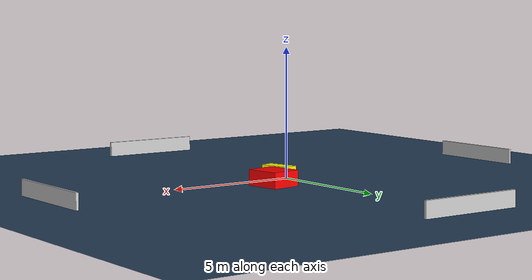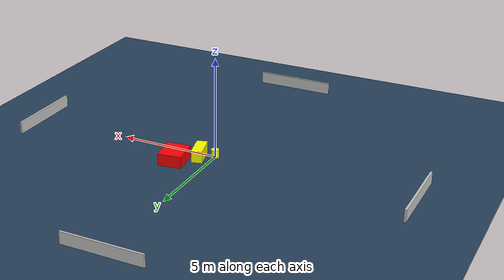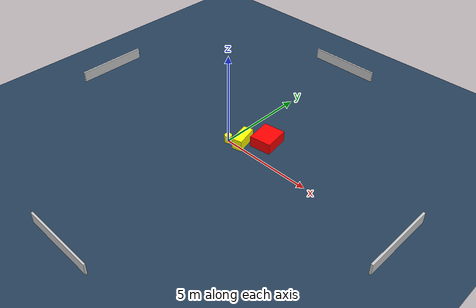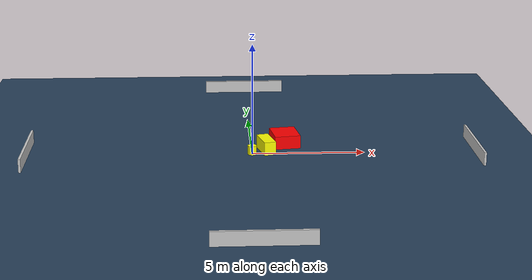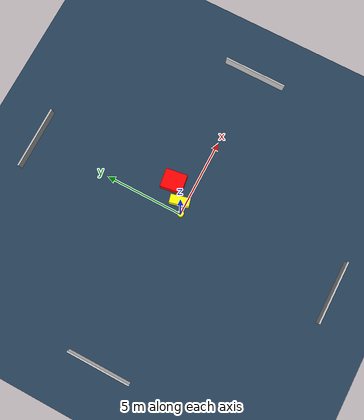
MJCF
<?xml version="1.0" ?>
<mujoco model="generated_environment">
  <option timestep="0.01" integrator="RK4" cone="elliptic"/>
  <default>
    <geom density="1"/>
  </default>
  <asset>
    <texture builtin="gradient" height="3072" name="skybox" rgb1="0.3 0.5 0.7" rgb2="0 0 0" type="skybox" width="512"/>
    <texture builtin="checker" height="300" name="groundplane" rgb1="0.2 0.3 0.4" rgb2="0.1 0.2 0.3" type="2d" width="300"/>
    <material name="groundplane" reflectance="0.2" texrepeat="5 5" texture="groundplane"/>
  </asset>
  <worldbody>
    <light dir="0 0 -1" directional="true" pos="0 0 1.5"/>
    <geom condim="3" friction="0.5 0.005 0.001" material="groundplane" name="floor" pos="0 0 0" size="0 0 0.05" type="plane"/>
    <body name="walls">
      <geom name="wall_1" condim="4" pos="-10.0 0.0 0.3" rgba="0.800000011920929 0.800000011920929 0.800000011920929 1.0" size="0.05 2.0 0.3" type="box"/>
      <geom name="wall_2" condim="4" pos="10.0 0.0 0.3" rgba="0.800000011920929 0.800000011920929 0.800000011920929 1.0" size="0.05 2.0 0.3" type="box"/>
      <geom name="wall_3" condim="4" pos="0.0 -10.0 0.3" rgba="0.800000011920929 0.800000011920929 0.800000011920929 1.0" size="2.0 0.05 0.3" type="box"/>
      <geom name="wall_4" condim="4" pos="0.0 10.0 0.3" rgba="0.800000011920929 0.800000011920929 0.800000011920929 1.0" size="2.0 0.05 0.3" type="box"/>
    </body>
    <body name="robot">
      <joint name="joint_x" type="slide" pos="0 0 0" axis="1 0 0"/>
      <joint name="joint_y" type="slide" pos="0 0 0" axis="0 1 0"/>
      <geom name="robot" type="cylinder" pos="0.0 0.0 0.2" size="0.2 0.2 0.0" mass="5.0" friction="1.0 0.005 0.0001" condim="4" rgba="1.0 1.0 0.0 1.0"/>
    </body>
    <body name="obstacle_1_movable">
      <geom name="obstacle_1_movable" condim="4" pos="0.6460815390273361 0.39457135363126833 0.3" euler="0 0 194.21884301430077" friction="0.0 0.005 0.001" rgba="1.0 1.0 0.0 1.0" size="0.26672689420712753 0.6125526519905962 0.3" type="box" mass="0.1"/>
      <joint type="free"/>
    </body>
    <body name="obstacle_2_static">
      <geom name="obstacle_2_static" condim="4" pos="1.5377613609704497 1.2727880365938637 0.3" euler="0 0 8.183179825658296" friction="0.0 0.005 0.001" rgba="1.0 0.0 0.0 1.0" size="0.5819050446387768 0.6832044396592232 0.3" type="box"/>
    </body>
  </worldbody>
  <actuator>
    <motor name="actuator_x" joint="joint_x" gear="1" ctrlrange="-1 1"/>
    <motor name="actuator_y" joint="joint_y" gear="1" ctrlrange="-1 1"/>
  </actuator>
</mujoco>
